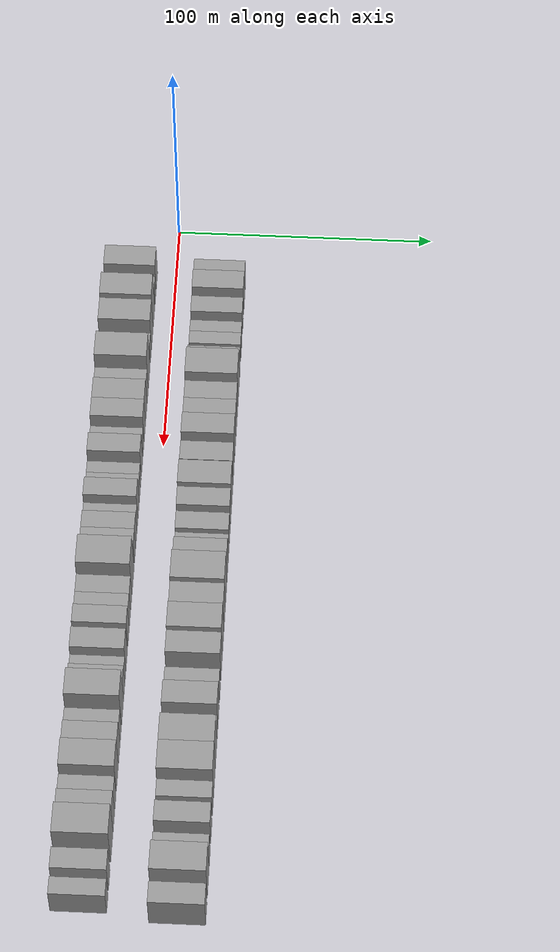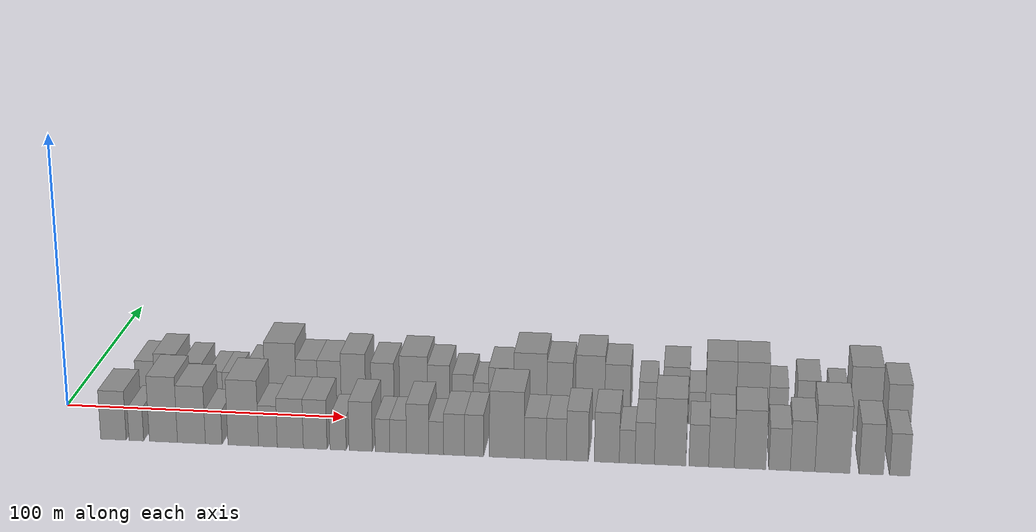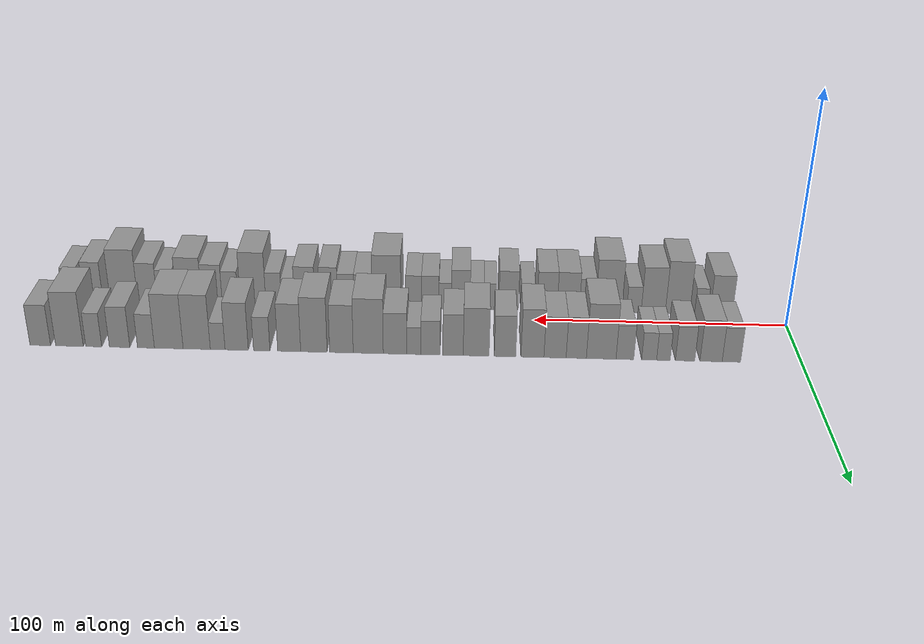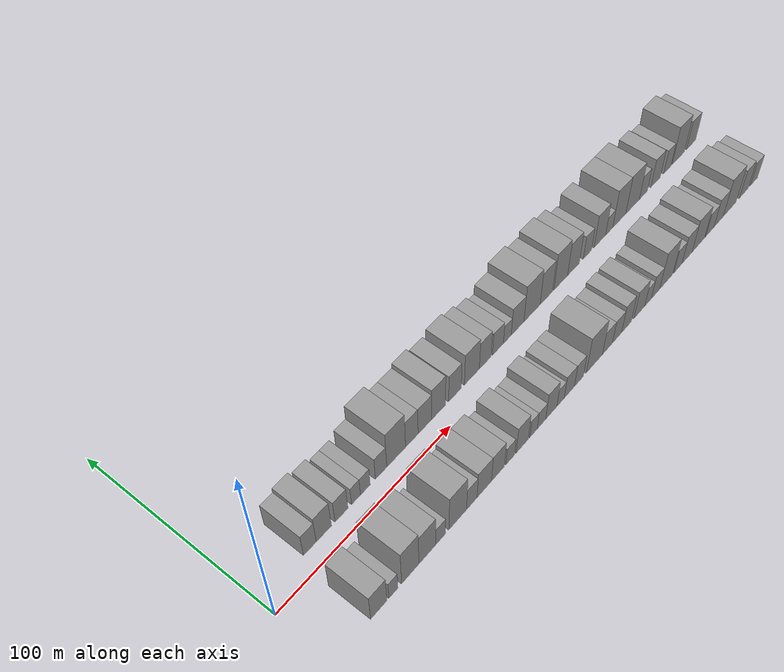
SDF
<sdf version="1.6">
 <world name="default">
  <scene>
   <sky><clouds><speed>12</speed></clouds></sky>
   <ambient>0.4 0.4 0.4 1</ambient>
   <background>0.7 0.7 0.7 1</background>
   <shadows>1</shadows>
  </scene>
  <gravity>0 0 -9.8066</gravity>
  <magnetic_field>6e-06 2.3e-05 -4.2e-05</magnetic_field>
  <physics default="0" name="default_physics" type="ode">
   <ode>
    <solver>
     <type>quick</type>
     <iters>10</iters>
     <sor>1.0</sor>
     <use_dynamic_moi_rescaling>0</use_dynamic_moi_rescaling>
    </solver>
    <constraints>
     <cfm>0</cfm>
     <erp>0.2</erp>
     <contact_max_correcting_vel>100</contact_max_correcting_vel>
     <contact_surface_layer>0.001</contact_surface_layer>
    </constraints>
   </ode>
   <max_step_size>0.004</max_step_size>
   <real_time_factor>1</real_time_factor>
   <real_time_update_rate>250</real_time_update_rate>
  </physics>
  <light name="sun" type="directional">
   <pose>0 0 10 0 0 0</pose>
   <diffuse>0.8 0.8 0.8 1</diffuse>
   <specular>0.2 0.2 0.2 1</specular>
   <attenuation>
    <range>1000</range>
    <constant>0.9</constant>
    <linear>0.01</linear>
    <quadratic>0.001</quadratic>
   </attenuation>
   <direction>-0.5 0.1 -0.9</direction>
  </light>
  <model name="building_1">
   <static>1</static>
   <pose>26.4708 17.5000 0 0.000000 0.000000 1.570796</pose>
   <link name="link">
    <pose>0 0 7.50 0 0 0</pose>
    <collision name="collision"><geometry><box><size>20.0000 6.9415 15.0000</size></box></geometry></collision>
    <visual name="visual">
     <cast_shadows>0</cast_shadows>
     <geometry><box><size>20.0000 6.9415 15.0000</size></box></geometry>
     <material>
      <script>
       <uri>model://grey_wall/materials/scripts</uri>
       <uri>model://grey_wall/materials/textures</uri>
       <name>vrc/grey_wall</name>
      </script>
     </material>
    </visual>
   </link>
  </model>
  <model name="building_2">
   <static>1</static>
   <pose>34.1181 17.5000 0 0.000000 0.000000 1.570796</pose>
   <link name="link">
    <pose>0 0 9.00 0 0 0</pose>
    <collision name="collision"><geometry><box><size>20.0000 8.3533 18.0000</size></box></geometry></collision>
    <visual name="visual">
     <cast_shadows>0</cast_shadows>
     <geometry><box><size>20.0000 8.3533 18.0000</size></box></geometry>
     <material>
      <script>
       <uri>model://grey_wall/materials/scripts</uri>
       <uri>model://grey_wall/materials/textures</uri>
       <name>vrc/grey_wall</name>
      </script>
     </material>
    </visual>
   </link>
  </model>
  <model name="building_3">
   <static>1</static>
   <pose>43.9311 17.5000 0 0.000000 0.000000 1.570796</pose>
   <link name="link">
    <pose>0 0 7.50 0 0 0</pose>
    <collision name="collision"><geometry><box><size>20.0000 7.2727 15.0000</size></box></geometry></collision>
    <visual name="visual">
     <cast_shadows>0</cast_shadows>
     <geometry><box><size>20.0000 7.2727 15.0000</size></box></geometry>
     <material>
      <script>
       <uri>model://grey_wall/materials/scripts</uri>
       <uri>model://grey_wall/materials/textures</uri>
       <name>vrc/grey_wall</name>
      </script>
     </material>
    </visual>
   </link>
  </model>
  <model name="building_4">
   <static>1</static>
   <pose>52.1233 17.5000 0 0.000000 0.000000 1.570796</pose>
   <link name="link">
    <pose>0 0 6.00 0 0 0</pose>
    <collision name="collision"><geometry><box><size>20.0000 5.1117 12.0000</size></box></geometry></collision>
    <visual name="visual">
     <cast_shadows>0</cast_shadows>
     <geometry><box><size>20.0000 5.1117 12.0000</size></box></geometry>
     <material>
      <script>
       <uri>model://grey_wall/materials/scripts</uri>
       <uri>model://grey_wall/materials/textures</uri>
       <name>vrc/grey_wall</name>
      </script>
     </material>
    </visual>
   </link>
  </model>
  <model name="building_5">
   <static>1</static>
   <pose>57.5063 17.5000 0 0.000000 0.000000 1.570796</pose>
   <link name="link">
    <pose>0 0 6.00 0 0 0</pose>
    <collision name="collision"><geometry><box><size>20.0000 5.6544 12.0000</size></box></geometry></collision>
    <visual name="visual">
     <cast_shadows>0</cast_shadows>
     <geometry><box><size>20.0000 5.6544 12.0000</size></box></geometry>
     <material>
      <script>
       <uri>model://grey_wall/materials/scripts</uri>
       <uri>model://grey_wall/materials/textures</uri>
       <name>vrc/grey_wall</name>
      </script>
     </material>
    </visual>
   </link>
  </model>
  <model name="building_6">
   <static>1</static>
   <pose>66.6913 17.5000 0 0.000000 0.000000 1.570796</pose>
   <link name="link">
    <pose>0 0 7.50 0 0 0</pose>
    <collision name="collision"><geometry><box><size>20.0000 6.7156 15.0000</size></box></geometry></collision>
    <visual name="visual">
     <cast_shadows>0</cast_shadows>
     <geometry><box><size>20.0000 6.7156 15.0000</size></box></geometry>
     <material>
      <script>
       <uri>model://grey_wall/materials/scripts</uri>
       <uri>model://grey_wall/materials/textures</uri>
       <name>vrc/grey_wall</name>
      </script>
     </material>
    </visual>
   </link>
  </model>
  <model name="building_7">
   <static>1</static>
   <pose>75.6834 17.5000 0 0.000000 0.000000 1.570796</pose>
   <link name="link">
    <pose>0 0 12.00 0 0 0</pose>
    <collision name="collision"><geometry><box><size>20.0000 11.2687 24.0000</size></box></geometry></collision>
    <visual name="visual">
     <cast_shadows>0</cast_shadows>
     <geometry><box><size>20.0000 11.2687 24.0000</size></box></geometry>
     <material>
      <script>
       <uri>model://grey_wall/materials/scripts</uri>
       <uri>model://grey_wall/materials/textures</uri>
       <name>vrc/grey_wall</name>
      </script>
     </material>
    </visual>
   </link>
  </model>
  <model name="building_8">
   <static>1</static>
   <pose>85.1692 17.5000 0 0.000000 0.000000 1.570796</pose>
   <link name="link">
    <pose>0 0 9.00 0 0 0</pose>
    <collision name="collision"><geometry><box><size>20.0000 7.7029 18.0000</size></box></geometry></collision>
    <visual name="visual">
     <cast_shadows>0</cast_shadows>
     <geometry><box><size>20.0000 7.7029 18.0000</size></box></geometry>
     <material>
      <script>
       <uri>model://grey_wall/materials/scripts</uri>
       <uri>model://grey_wall/materials/textures</uri>
       <name>vrc/grey_wall</name>
      </script>
     </material>
    </visual>
   </link>
  </model>
  <model name="building_9">
   <static>1</static>
   <pose>93.2389 17.5000 0 0.000000 0.000000 1.570796</pose>
   <link name="link">
    <pose>0 0 9.00 0 0 0</pose>
    <collision name="collision"><geometry><box><size>20.0000 8.4366 18.0000</size></box></geometry></collision>
    <visual name="visual">
     <cast_shadows>0</cast_shadows>
     <geometry><box><size>20.0000 8.4366 18.0000</size></box></geometry>
     <material>
      <script>
       <uri>model://grey_wall/materials/scripts</uri>
       <uri>model://grey_wall/materials/textures</uri>
       <name>vrc/grey_wall</name>
      </script>
     </material>
    </visual>
   </link>
  </model>
  <model name="building_10">
   <static>1</static>
   <pose>101.8389 17.5000 0 0.000000 0.000000 1.570796</pose>
   <link name="link">
    <pose>0 0 10.50 0 0 0</pose>
    <collision name="collision"><geometry><box><size>20.0000 8.7634 21.0000</size></box></geometry></collision>
    <visual name="visual">
     <cast_shadows>0</cast_shadows>
     <geometry><box><size>20.0000 8.7634 21.0000</size></box></geometry>
     <material>
      <script>
       <uri>model://grey_wall/materials/scripts</uri>
       <uri>model://grey_wall/materials/textures</uri>
       <name>vrc/grey_wall</name>
      </script>
     </material>
    </visual>
   </link>
  </model>
  <model name="building_11">
   <static>1</static>
   <pose>112.3076 17.5000 0 0.000000 0.000000 1.570796</pose>
   <link name="link">
    <pose>0 0 9.00 0 0 0</pose>
    <collision name="collision"><geometry><box><size>20.0000 8.1739 18.0000</size></box></geometry></collision>
    <visual name="visual">
     <cast_shadows>0</cast_shadows>
     <geometry><box><size>20.0000 8.1739 18.0000</size></box></geometry>
     <material>
      <script>
       <uri>model://grey_wall/materials/scripts</uri>
       <uri>model://grey_wall/materials/textures</uri>
       <name>vrc/grey_wall</name>
      </script>
     </material>
    </visual>
   </link>
  </model>
  <model name="building_12">
   <static>1</static>
   <pose>123.3487 17.5000 0 0.000000 0.000000 1.570796</pose>
   <link name="link">
    <pose>0 0 10.50 0 0 0</pose>
    <collision name="collision"><geometry><box><size>20.0000 9.9083 21.0000</size></box></geometry></collision>
    <visual name="visual">
     <cast_shadows>0</cast_shadows>
     <geometry><box><size>20.0000 9.9083 21.0000</size></box></geometry>
     <material>
      <script>
       <uri>model://grey_wall/materials/scripts</uri>
       <uri>model://grey_wall/materials/textures</uri>
       <name>vrc/grey_wall</name>
      </script>
     </material>
    </visual>
   </link>
  </model>
  <model name="building_13">
   <static>1</static>
   <pose>132.2351 17.5000 0 0.000000 0.000000 1.570796</pose>
   <link name="link">
    <pose>0 0 9.00 0 0 0</pose>
    <collision name="collision"><geometry><box><size>20.0000 7.8645 18.0000</size></box></geometry></collision>
    <visual name="visual">
     <cast_shadows>0</cast_shadows>
     <geometry><box><size>20.0000 7.8645 18.0000</size></box></geometry>
     <material>
      <script>
       <uri>model://grey_wall/materials/scripts</uri>
       <uri>model://grey_wall/materials/textures</uri>
       <name>vrc/grey_wall</name>
      </script>
     </material>
    </visual>
   </link>
  </model>
  <model name="building_14">
   <static>1</static>
   <pose>140.8836 17.5000 0 0.000000 0.000000 1.570796</pose>
   <link name="link">
    <pose>0 0 7.50 0 0 0</pose>
    <collision name="collision"><geometry><box><size>20.0000 7.4326 15.0000</size></box></geometry></collision>
    <visual name="visual">
     <cast_shadows>0</cast_shadows>
     <geometry><box><size>20.0000 7.4326 15.0000</size></box></geometry>
     <material>
      <script>
       <uri>model://grey_wall/materials/scripts</uri>
       <uri>model://grey_wall/materials/textures</uri>
       <name>vrc/grey_wall</name>
      </script>
     </material>
    </visual>
   </link>
  </model>
  <model name="building_15">
   <static>1</static>
   <pose>147.3118 17.5000 0 0.000000 0.000000 1.570796</pose>
   <link name="link">
    <pose>0 0 6.00 0 0 0</pose>
    <collision name="collision"><geometry><box><size>20.0000 5.4236 12.0000</size></box></geometry></collision>
    <visual name="visual">
     <cast_shadows>0</cast_shadows>
     <geometry><box><size>20.0000 5.4236 12.0000</size></box></geometry>
     <material>
      <script>
       <uri>model://grey_wall/materials/scripts</uri>
       <uri>model://grey_wall/materials/textures</uri>
       <name>vrc/grey_wall</name>
      </script>
     </material>
    </visual>
   </link>
  </model>
  <model name="building_16">
   <static>1</static>
   <pose>154.4905 17.5000 0 0.000000 0.000000 1.570796</pose>
   <link name="link">
    <pose>0 0 9.00 0 0 0</pose>
    <collision name="collision"><geometry><box><size>20.0000 8.9338 18.0000</size></box></geometry></collision>
    <visual name="visual">
     <cast_shadows>0</cast_shadows>
     <geometry><box><size>20.0000 8.9338 18.0000</size></box></geometry>
     <material>
      <script>
       <uri>model://grey_wall/materials/scripts</uri>
       <uri>model://grey_wall/materials/textures</uri>
       <name>vrc/grey_wall</name>
      </script>
     </material>
    </visual>
   </link>
  </model>
  <model name="building_17">
   <static>1</static>
   <pose>164.7405 17.5000 0 0.000000 0.000000 1.570796</pose>
   <link name="link">
    <pose>0 0 12.00 0 0 0</pose>
    <collision name="collision"><geometry><box><size>20.0000 11.5662 24.0000</size></box></geometry></collision>
    <visual name="visual">
     <cast_shadows>0</cast_shadows>
     <geometry><box><size>20.0000 11.5662 24.0000</size></box></geometry>
     <material>
      <script>
       <uri>model://grey_wall/materials/scripts</uri>
       <uri>model://grey_wall/materials/textures</uri>
       <name>vrc/grey_wall</name>
      </script>
     </material>
    </visual>
   </link>
  </model>
  <model name="building_18">
   <static>1</static>
   <pose>175.0531 17.5000 0 0.000000 0.000000 1.570796</pose>
   <link name="link">
    <pose>0 0 10.50 0 0 0</pose>
    <collision name="collision"><geometry><box><size>20.0000 9.0590 21.0000</size></box></geometry></collision>
    <visual name="visual">
     <cast_shadows>0</cast_shadows>
     <geometry><box><size>20.0000 9.0590 21.0000</size></box></geometry>
     <material>
      <script>
       <uri>model://grey_wall/materials/scripts</uri>
       <uri>model://grey_wall/materials/textures</uri>
       <name>vrc/grey_wall</name>
      </script>
     </material>
    </visual>
   </link>
  </model>
  <model name="building_19">
   <static>1</static>
   <pose>185.6934 17.5000 0 0.000000 0.000000 1.570796</pose>
   <link name="link">
    <pose>0 0 12.00 0 0 0</pose>
    <collision name="collision"><geometry><box><size>20.0000 10.2216 24.0000</size></box></geometry></collision>
    <visual name="visual">
     <cast_shadows>0</cast_shadows>
     <geometry><box><size>20.0000 10.2216 24.0000</size></box></geometry>
     <material>
      <script>
       <uri>model://grey_wall/materials/scripts</uri>
       <uri>model://grey_wall/materials/textures</uri>
       <name>vrc/grey_wall</name>
      </script>
     </material>
    </visual>
   </link>
  </model>
  <model name="building_20">
   <static>1</static>
   <pose>195.2485 17.5000 0 0.000000 0.000000 1.570796</pose>
   <link name="link">
    <pose>0 0 10.50 0 0 0</pose>
    <collision name="collision"><geometry><box><size>20.0000 8.8885 21.0000</size></box></geometry></collision>
    <visual name="visual">
     <cast_shadows>0</cast_shadows>
     <geometry><box><size>20.0000 8.8885 21.0000</size></box></geometry>
     <material>
      <script>
       <uri>model://grey_wall/materials/scripts</uri>
       <uri>model://grey_wall/materials/textures</uri>
       <name>vrc/grey_wall</name>
      </script>
     </material>
    </visual>
   </link>
  </model>
  <model name="building_21">
   <static>1</static>
   <pose>205.8795 17.5000 0 0.000000 0.000000 1.570796</pose>
   <link name="link">
    <pose>0 0 7.50 0 0 0</pose>
    <collision name="collision"><geometry><box><size>20.0000 6.3734 15.0000</size></box></geometry></collision>
    <visual name="visual">
     <cast_shadows>0</cast_shadows>
     <geometry><box><size>20.0000 6.3734 15.0000</size></box></geometry>
     <material>
      <script>
       <uri>model://grey_wall/materials/scripts</uri>
       <uri>model://grey_wall/materials/textures</uri>
       <name>vrc/grey_wall</name>
      </script>
     </material>
    </visual>
   </link>
  </model>
  <model name="building_22">
   <static>1</static>
   <pose>215.5824 17.5000 0 0.000000 0.000000 1.570796</pose>
   <link name="link">
    <pose>0 0 10.50 0 0 0</pose>
    <collision name="collision"><geometry><box><size>20.0000 9.0325 21.0000</size></box></geometry></collision>
    <visual name="visual">
     <cast_shadows>0</cast_shadows>
     <geometry><box><size>20.0000 9.0325 21.0000</size></box></geometry>
     <material>
      <script>
       <uri>model://grey_wall/materials/scripts</uri>
       <uri>model://grey_wall/materials/textures</uri>
       <name>vrc/grey_wall</name>
      </script>
     </material>
    </visual>
   </link>
  </model>
  <model name="building_23">
   <static>1</static>
   <pose>222.9593 17.5000 0 0.000000 0.000000 1.570796</pose>
   <link name="link">
    <pose>0 0 6.00 0 0 0</pose>
    <collision name="collision"><geometry><box><size>20.0000 5.7213 12.0000</size></box></geometry></collision>
    <visual name="visual">
     <cast_shadows>0</cast_shadows>
     <geometry><box><size>20.0000 5.7213 12.0000</size></box></geometry>
     <material>
      <script>
       <uri>model://grey_wall/materials/scripts</uri>
       <uri>model://grey_wall/materials/textures</uri>
       <name>vrc/grey_wall</name>
      </script>
     </material>
    </visual>
   </link>
  </model>
  <model name="building_24">
   <static>1</static>
   <pose>231.1125 17.5000 0 0.000000 0.000000 1.570796</pose>
   <link name="link">
    <pose>0 0 12.00 0 0 0</pose>
    <collision name="collision"><geometry><box><size>20.0000 10.5853 24.0000</size></box></geometry></collision>
    <visual name="visual">
     <cast_shadows>0</cast_shadows>
     <geometry><box><size>20.0000 10.5853 24.0000</size></box></geometry>
     <material>
      <script>
       <uri>model://grey_wall/materials/scripts</uri>
       <uri>model://grey_wall/materials/textures</uri>
       <name>vrc/grey_wall</name>
      </script>
     </material>
    </visual>
   </link>
  </model>
  <model name="building_25">
   <static>1</static>
   <pose>242.0030 17.5000 0 0.000000 0.000000 1.570796</pose>
   <link name="link">
    <pose>0 0 12.00 0 0 0</pose>
    <collision name="collision"><geometry><box><size>20.0000 11.1956 24.0000</size></box></geometry></collision>
    <visual name="visual">
     <cast_shadows>0</cast_shadows>
     <geometry><box><size>20.0000 11.1956 24.0000</size></box></geometry>
     <material>
      <script>
       <uri>model://grey_wall/materials/scripts</uri>
       <uri>model://grey_wall/materials/textures</uri>
       <name>vrc/grey_wall</name>
      </script>
     </material>
    </visual>
   </link>
  </model>
  <model name="building_26">
   <static>1</static>
   <pose>250.9000 17.5000 0 0.000000 0.000000 1.570796</pose>
   <link name="link">
    <pose>0 0 7.50 0 0 0</pose>
    <collision name="collision"><geometry><box><size>20.0000 6.5985 15.0000</size></box></geometry></collision>
    <visual name="visual">
     <cast_shadows>0</cast_shadows>
     <geometry><box><size>20.0000 6.5985 15.0000</size></box></geometry>
     <material>
      <script>
       <uri>model://grey_wall/materials/scripts</uri>
       <uri>model://grey_wall/materials/textures</uri>
       <name>vrc/grey_wall</name>
      </script>
     </material>
    </visual>
   </link>
  </model>
  <model name="building_27">
   <static>1</static>
   <pose>261.1940 17.5000 0 0.000000 0.000000 1.570796</pose>
   <link name="link">
    <pose>0 0 9.00 0 0 0</pose>
    <collision name="collision"><geometry><box><size>20.0000 7.9895 18.0000</size></box></geometry></collision>
    <visual name="visual">
     <cast_shadows>0</cast_shadows>
     <geometry><box><size>20.0000 7.9895 18.0000</size></box></geometry>
     <material>
      <script>
       <uri>model://grey_wall/materials/scripts</uri>
       <uri>model://grey_wall/materials/textures</uri>
       <name>vrc/grey_wall</name>
      </script>
     </material>
    </visual>
   </link>
  </model>
  <model name="building_28">
   <static>1</static>
   <pose>271.3050 17.5000 0 0.000000 0.000000 1.570796</pose>
   <link name="link">
    <pose>0 0 7.50 0 0 0</pose>
    <collision name="collision"><geometry><box><size>20.0000 6.2325 15.0000</size></box></geometry></collision>
    <visual name="visual">
     <cast_shadows>0</cast_shadows>
     <geometry><box><size>20.0000 6.2325 15.0000</size></box></geometry>
     <material>
      <script>
       <uri>model://grey_wall/materials/scripts</uri>
       <uri>model://grey_wall/materials/textures</uri>
       <name>vrc/grey_wall</name>
      </script>
     </material>
    </visual>
   </link>
  </model>
  <model name="building_29">
   <static>1</static>
   <pose>280.8376 17.5000 0 0.000000 0.000000 1.570796</pose>
   <link name="link">
    <pose>0 0 12.00 0 0 0</pose>
    <collision name="collision"><geometry><box><size>20.0000 10.8327 24.0000</size></box></geometry></collision>
    <visual name="visual">
     <cast_shadows>0</cast_shadows>
     <geometry><box><size>20.0000 10.8327 24.0000</size></box></geometry>
     <material>
      <script>
       <uri>model://grey_wall/materials/scripts</uri>
       <uri>model://grey_wall/materials/textures</uri>
       <name>vrc/grey_wall</name>
      </script>
     </material>
    </visual>
   </link>
  </model>
  <model name="building_30">
   <static>1</static>
   <pose>292.2937 17.5000 0 0.000000 0.000000 1.570796</pose>
   <link name="link">
    <pose>0 0 9.00 0 0 0</pose>
    <collision name="collision"><geometry><box><size>20.0000 8.0795 18.0000</size></box></geometry></collision>
    <visual name="visual">
     <cast_shadows>0</cast_shadows>
     <geometry><box><size>20.0000 8.0795 18.0000</size></box></geometry>
     <material>
      <script>
       <uri>model://grey_wall/materials/scripts</uri>
       <uri>model://grey_wall/materials/textures</uri>
       <name>vrc/grey_wall</name>
      </script>
     </material>
    </visual>
   </link>
  </model>
  <model name="building_31">
   <static>1</static>
   <pose>24.4698 -17.5000 0 0.000000 0.000000 1.570796</pose>
   <link name="link">
    <pose>0 0 9.00 0 0 0</pose>
    <collision name="collision"><geometry><box><size>20.0000 8.9396 18.0000</size></box></geometry></collision>
    <visual name="visual">
     <cast_shadows>0</cast_shadows>
     <geometry><box><size>20.0000 8.9396 18.0000</size></box></geometry>
     <material>
      <script>
       <uri>model://grey_wall/materials/scripts</uri>
       <uri>model://grey_wall/materials/textures</uri>
       <name>vrc/grey_wall</name>
      </script>
     </material>
    </visual>
   </link>
  </model>
  <model name="building_32">
   <static>1</static>
   <pose>32.5034 -17.5000 0 0.000000 0.000000 1.570796</pose>
   <link name="link">
    <pose>0 0 6.00 0 0 0</pose>
    <collision name="collision"><geometry><box><size>20.0000 5.1276 12.0000</size></box></geometry></collision>
    <visual name="visual">
     <cast_shadows>0</cast_shadows>
     <geometry><box><size>20.0000 5.1276 12.0000</size></box></geometry>
     <material>
      <script>
       <uri>model://grey_wall/materials/scripts</uri>
       <uri>model://grey_wall/materials/textures</uri>
       <name>vrc/grey_wall</name>
      </script>
     </material>
    </visual>
   </link>
  </model>
  <model name="building_33">
   <static>1</static>
   <pose>41.9767 -17.5000 0 0.000000 0.000000 1.570796</pose>
   <link name="link">
    <pose>0 0 12.00 0 0 0</pose>
    <collision name="collision"><geometry><box><size>20.0000 9.8190 24.0000</size></box></geometry></collision>
    <visual name="visual">
     <cast_shadows>0</cast_shadows>
     <geometry><box><size>20.0000 9.8190 24.0000</size></box></geometry>
     <material>
      <script>
       <uri>model://grey_wall/materials/scripts</uri>
       <uri>model://grey_wall/materials/textures</uri>
       <name>vrc/grey_wall</name>
      </script>
     </material>
    </visual>
   </link>
  </model>
  <model name="building_34">
   <static>1</static>
   <pose>51.7552 -17.5000 0 0.000000 0.000000 1.570796</pose>
   <link name="link">
    <pose>0 0 10.50 0 0 0</pose>
    <collision name="collision"><geometry><box><size>20.0000 9.7381 21.0000</size></box></geometry></collision>
    <visual name="visual">
     <cast_shadows>0</cast_shadows>
     <geometry><box><size>20.0000 9.7381 21.0000</size></box></geometry>
     <material>
      <script>
       <uri>model://grey_wall/materials/scripts</uri>
       <uri>model://grey_wall/materials/textures</uri>
       <name>vrc/grey_wall</name>
      </script>
     </material>
    </visual>
   </link>
  </model>
  <model name="building_35">
   <static>1</static>
   <pose>59.5326 -17.5000 0 0.000000 0.000000 1.570796</pose>
   <link name="link">
    <pose>0 0 6.00 0 0 0</pose>
    <collision name="collision"><geometry><box><size>20.0000 5.8166 12.0000</size></box></geometry></collision>
    <visual name="visual">
     <cast_shadows>0</cast_shadows>
     <geometry><box><size>20.0000 5.8166 12.0000</size></box></geometry>
     <material>
      <script>
       <uri>model://grey_wall/materials/scripts</uri>
       <uri>model://grey_wall/materials/textures</uri>
       <name>vrc/grey_wall</name>
      </script>
     </material>
    </visual>
   </link>
  </model>
  <model name="building_36">
   <static>1</static>
   <pose>69.7482 -17.5000 0 0.000000 0.000000 1.570796</pose>
   <link name="link">
    <pose>0 0 12.00 0 0 0</pose>
    <collision name="collision"><geometry><box><size>20.0000 10.6147 24.0000</size></box></geometry></collision>
    <visual name="visual">
     <cast_shadows>0</cast_shadows>
     <geometry><box><size>20.0000 10.6147 24.0000</size></box></geometry>
     <material>
      <script>
       <uri>model://grey_wall/materials/scripts</uri>
       <uri>model://grey_wall/materials/textures</uri>
       <name>vrc/grey_wall</name>
      </script>
     </material>
    </visual>
   </link>
  </model>
  <model name="building_37">
   <static>1</static>
   <pose>78.3023 -17.5000 0 0.000000 0.000000 1.570796</pose>
   <link name="link">
    <pose>0 0 7.50 0 0 0</pose>
    <collision name="collision"><geometry><box><size>20.0000 6.4936 15.0000</size></box></geometry></collision>
    <visual name="visual">
     <cast_shadows>0</cast_shadows>
     <geometry><box><size>20.0000 6.4936 15.0000</size></box></geometry>
     <material>
      <script>
       <uri>model://grey_wall/materials/scripts</uri>
       <uri>model://grey_wall/materials/textures</uri>
       <name>vrc/grey_wall</name>
      </script>
     </material>
    </visual>
   </link>
  </model>
  <model name="building_38">
   <static>1</static>
   <pose>86.0346 -17.5000 0 0.000000 0.000000 1.570796</pose>
   <link name="link">
    <pose>0 0 9.00 0 0 0</pose>
    <collision name="collision"><geometry><box><size>20.0000 8.9710 18.0000</size></box></geometry></collision>
    <visual name="visual">
     <cast_shadows>0</cast_shadows>
     <geometry><box><size>20.0000 8.9710 18.0000</size></box></geometry>
     <material>
      <script>
       <uri>model://grey_wall/materials/scripts</uri>
       <uri>model://grey_wall/materials/textures</uri>
       <name>vrc/grey_wall</name>
      </script>
     </material>
    </visual>
   </link>
  </model>
  <model name="building_39">
   <static>1</static>
   <pose>94.6018 -17.5000 0 0.000000 0.000000 1.570796</pose>
   <link name="link">
    <pose>0 0 9.00 0 0 0</pose>
    <collision name="collision"><geometry><box><size>20.0000 8.1634 18.0000</size></box></geometry></collision>
    <visual name="visual">
     <cast_shadows>0</cast_shadows>
     <geometry><box><size>20.0000 8.1634 18.0000</size></box></geometry>
     <material>
      <script>
       <uri>model://grey_wall/materials/scripts</uri>
       <uri>model://grey_wall/materials/textures</uri>
       <name>vrc/grey_wall</name>
      </script>
     </material>
    </visual>
   </link>
  </model>
  <model name="building_40">
   <static>1</static>
   <pose>102.4759 -17.5000 0 0.000000 0.000000 1.570796</pose>
   <link name="link">
    <pose>0 0 6.00 0 0 0</pose>
    <collision name="collision"><geometry><box><size>20.0000 5.5847 12.0000</size></box></geometry></collision>
    <visual name="visual">
     <cast_shadows>0</cast_shadows>
     <geometry><box><size>20.0000 5.5847 12.0000</size></box></geometry>
     <material>
      <script>
       <uri>model://grey_wall/materials/scripts</uri>
       <uri>model://grey_wall/materials/textures</uri>
       <name>vrc/grey_wall</name>
      </script>
     </material>
    </visual>
   </link>
  </model>
  <model name="building_41">
   <static>1</static>
   <pose>110.2476 -17.5000 0 0.000000 0.000000 1.570796</pose>
   <link name="link">
    <pose>0 0 9.00 0 0 0</pose>
    <collision name="collision"><geometry><box><size>20.0000 7.9588 18.0000</size></box></geometry></collision>
    <visual name="visual">
     <cast_shadows>0</cast_shadows>
     <geometry><box><size>20.0000 7.9588 18.0000</size></box></geometry>
     <material>
      <script>
       <uri>model://grey_wall/materials/scripts</uri>
       <uri>model://grey_wall/materials/textures</uri>
       <name>vrc/grey_wall</name>
      </script>
     </material>
    </visual>
   </link>
  </model>
  <model name="building_42">
   <static>1</static>
   <pose>117.7077 -17.5000 0 0.000000 0.000000 1.570796</pose>
   <link name="link">
    <pose>0 0 6.00 0 0 0</pose>
    <collision name="collision"><geometry><box><size>20.0000 4.9614 12.0000</size></box></geometry></collision>
    <visual name="visual">
     <cast_shadows>0</cast_shadows>
     <geometry><box><size>20.0000 4.9614 12.0000</size></box></geometry>
     <material>
      <script>
       <uri>model://grey_wall/materials/scripts</uri>
       <uri>model://grey_wall/materials/textures</uri>
       <name>vrc/grey_wall</name>
      </script>
     </material>
    </visual>
   </link>
  </model>
  <model name="building_43">
   <static>1</static>
   <pose>123.0354 -17.5000 0 0.000000 0.000000 1.570796</pose>
   <link name="link">
    <pose>0 0 6.00 0 0 0</pose>
    <collision name="collision"><geometry><box><size>20.0000 5.6939 12.0000</size></box></geometry></collision>
    <visual name="visual">
     <cast_shadows>0</cast_shadows>
     <geometry><box><size>20.0000 5.6939 12.0000</size></box></geometry>
     <material>
      <script>
       <uri>model://grey_wall/materials/scripts</uri>
       <uri>model://grey_wall/materials/textures</uri>
       <name>vrc/grey_wall</name>
      </script>
     </material>
    </visual>
   </link>
  </model>
  <model name="building_44">
   <static>1</static>
   <pose>129.6922 -17.5000 0 0.000000 0.000000 1.570796</pose>
   <link name="link">
    <pose>0 0 9.00 0 0 0</pose>
    <collision name="collision"><geometry><box><size>20.0000 7.6197 18.0000</size></box></geometry></collision>
    <visual name="visual">
     <cast_shadows>0</cast_shadows>
     <geometry><box><size>20.0000 7.6197 18.0000</size></box></geometry>
     <material>
      <script>
       <uri>model://grey_wall/materials/scripts</uri>
       <uri>model://grey_wall/materials/textures</uri>
       <name>vrc/grey_wall</name>
      </script>
     </material>
    </visual>
   </link>
  </model>
  <model name="building_45">
   <static>1</static>
   <pose>136.0323 -17.5000 0 0.000000 0.000000 1.570796</pose>
   <link name="link">
    <pose>0 0 6.00 0 0 0</pose>
    <collision name="collision"><geometry><box><size>20.0000 5.0606 12.0000</size></box></geometry></collision>
    <visual name="visual">
     <cast_shadows>0</cast_shadows>
     <geometry><box><size>20.0000 5.0606 12.0000</size></box></geometry>
     <material>
      <script>
       <uri>model://grey_wall/materials/scripts</uri>
       <uri>model://grey_wall/materials/textures</uri>
       <name>vrc/grey_wall</name>
      </script>
     </material>
    </visual>
   </link>
  </model>
  <model name="building_46">
   <static>1</static>
   <pose>142.1181 -17.5000 0 0.000000 0.000000 1.570796</pose>
   <link name="link">
    <pose>0 0 7.50 0 0 0</pose>
    <collision name="collision"><geometry><box><size>20.0000 7.1110 15.0000</size></box></geometry></collision>
    <visual name="visual">
     <cast_shadows>0</cast_shadows>
     <geometry><box><size>20.0000 7.1110 15.0000</size></box></geometry>
     <material>
      <script>
       <uri>model://grey_wall/materials/scripts</uri>
       <uri>model://grey_wall/materials/textures</uri>
       <name>vrc/grey_wall</name>
      </script>
     </material>
    </visual>
   </link>
  </model>
  <model name="building_47">
   <static>1</static>
   <pose>148.8772 -17.5000 0 0.000000 0.000000 1.570796</pose>
   <link name="link">
    <pose>0 0 7.50 0 0 0</pose>
    <collision name="collision"><geometry><box><size>20.0000 6.4071 15.0000</size></box></geometry></collision>
    <visual name="visual">
     <cast_shadows>0</cast_shadows>
     <geometry><box><size>20.0000 6.4071 15.0000</size></box></geometry>
     <material>
      <script>
       <uri>model://grey_wall/materials/scripts</uri>
       <uri>model://grey_wall/materials/textures</uri>
       <name>vrc/grey_wall</name>
      </script>
     </material>
    </visual>
   </link>
  </model>
  <model name="building_48">
   <static>1</static>
   <pose>159.9604 -17.5000 0 0.000000 0.000000 1.570796</pose>
   <link name="link">
    <pose>0 0 12.00 0 0 0</pose>
    <collision name="collision"><geometry><box><size>20.0000 11.7594 24.0000</size></box></geometry></collision>
    <visual name="visual">
     <cast_shadows>0</cast_shadows>
     <geometry><box><size>20.0000 11.7594 24.0000</size></box></geometry>
     <material>
      <script>
       <uri>model://grey_wall/materials/scripts</uri>
       <uri>model://grey_wall/materials/textures</uri>
       <name>vrc/grey_wall</name>
      </script>
     </material>
    </visual>
   </link>
  </model>
  <model name="building_49">
   <static>1</static>
   <pose>169.5211 -17.5000 0 0.000000 0.000000 1.570796</pose>
   <link name="link">
    <pose>0 0 7.50 0 0 0</pose>
    <collision name="collision"><geometry><box><size>20.0000 7.3620 15.0000</size></box></geometry></collision>
    <visual name="visual">
     <cast_shadows>0</cast_shadows>
     <geometry><box><size>20.0000 7.3620 15.0000</size></box></geometry>
     <material>
      <script>
       <uri>model://grey_wall/materials/scripts</uri>
       <uri>model://grey_wall/materials/textures</uri>
       <name>vrc/grey_wall</name>
      </script>
     </material>
    </visual>
   </link>
  </model>
  <model name="building_50">
   <static>1</static>
   <pose>176.5949 -17.5000 0 0.000000 0.000000 1.570796</pose>
   <link name="link">
    <pose>0 0 7.50 0 0 0</pose>
    <collision name="collision"><geometry><box><size>20.0000 6.7854 15.0000</size></box></geometry></collision>
    <visual name="visual">
     <cast_shadows>0</cast_shadows>
     <geometry><box><size>20.0000 6.7854 15.0000</size></box></geometry>
     <material>
      <script>
       <uri>model://grey_wall/materials/scripts</uri>
       <uri>model://grey_wall/materials/textures</uri>
       <name>vrc/grey_wall</name>
      </script>
     </material>
    </visual>
   </link>
  </model>
  <model name="building_51">
   <static>1</static>
   <pose>183.6691 -17.5000 0 0.000000 0.000000 1.570796</pose>
   <link name="link">
    <pose>0 0 9.00 0 0 0</pose>
    <collision name="collision"><geometry><box><size>20.0000 7.3631 18.0000</size></box></geometry></collision>
    <visual name="visual">
     <cast_shadows>0</cast_shadows>
     <geometry><box><size>20.0000 7.3631 18.0000</size></box></geometry>
     <material>
      <script>
       <uri>model://grey_wall/materials/scripts</uri>
       <uri>model://grey_wall/materials/textures</uri>
       <name>vrc/grey_wall</name>
      </script>
     </material>
    </visual>
   </link>
  </model>
  <model name="building_52">
   <static>1</static>
   <pose>193.5242 -17.5000 0 0.000000 0.000000 1.570796</pose>
   <link name="link">
    <pose>0 0 9.00 0 0 0</pose>
    <collision name="collision"><geometry><box><size>20.0000 8.3470 18.0000</size></box></geometry></collision>
    <visual name="visual">
     <cast_shadows>0</cast_shadows>
     <geometry><box><size>20.0000 8.3470 18.0000</size></box></geometry>
     <material>
      <script>
       <uri>model://grey_wall/materials/scripts</uri>
       <uri>model://grey_wall/materials/textures</uri>
       <name>vrc/grey_wall</name>
      </script>
     </material>
    </visual>
   </link>
  </model>
  <model name="building_53">
   <static>1</static>
   <pose>200.3309 -17.5000 0 0.000000 0.000000 1.570796</pose>
   <link name="link">
    <pose>0 0 6.00 0 0 0</pose>
    <collision name="collision"><geometry><box><size>20.0000 5.2664 12.0000</size></box></geometry></collision>
    <visual name="visual">
     <cast_shadows>0</cast_shadows>
     <geometry><box><size>20.0000 5.2664 12.0000</size></box></geometry>
     <material>
      <script>
       <uri>model://grey_wall/materials/scripts</uri>
       <uri>model://grey_wall/materials/textures</uri>
       <name>vrc/grey_wall</name>
      </script>
     </material>
    </visual>
   </link>
  </model>
  <model name="building_54">
   <static>1</static>
   <pose>206.1816 -17.5000 0 0.000000 0.000000 1.570796</pose>
   <link name="link">
    <pose>0 0 7.50 0 0 0</pose>
    <collision name="collision"><geometry><box><size>20.0000 6.4350 15.0000</size></box></geometry></collision>
    <visual name="visual">
     <cast_shadows>0</cast_shadows>
     <geometry><box><size>20.0000 6.4350 15.0000</size></box></geometry>
     <material>
      <script>
       <uri>model://grey_wall/materials/scripts</uri>
       <uri>model://grey_wall/materials/textures</uri>
       <name>vrc/grey_wall</name>
      </script>
     </material>
    </visual>
   </link>
  </model>
  <model name="building_55">
   <static>1</static>
   <pose>214.6274 -17.5000 0 0.000000 0.000000 1.570796</pose>
   <link name="link">
    <pose>0 0 12.00 0 0 0</pose>
    <collision name="collision"><geometry><box><size>20.0000 10.4568 24.0000</size></box></geometry></collision>
    <visual name="visual">
     <cast_shadows>0</cast_shadows>
     <geometry><box><size>20.0000 10.4568 24.0000</size></box></geometry>
     <material>
      <script>
       <uri>model://grey_wall/materials/scripts</uri>
       <uri>model://grey_wall/materials/textures</uri>
       <name>vrc/grey_wall</name>
      </script>
     </material>
    </visual>
   </link>
  </model>
  <model name="building_56">
   <static>1</static>
   <pose>224.1201 -17.5000 0 0.000000 0.000000 1.570796</pose>
   <link name="link">
    <pose>0 0 7.50 0 0 0</pose>
    <collision name="collision"><geometry><box><size>20.0000 6.5286 15.0000</size></box></geometry></collision>
    <visual name="visual">
     <cast_shadows>0</cast_shadows>
     <geometry><box><size>20.0000 6.5286 15.0000</size></box></geometry>
     <material>
      <script>
       <uri>model://grey_wall/materials/scripts</uri>
       <uri>model://grey_wall/materials/textures</uri>
       <name>vrc/grey_wall</name>
      </script>
     </material>
    </visual>
   </link>
  </model>
  <model name="building_57">
   <static>1</static>
   <pose>231.6221 -17.5000 0 0.000000 0.000000 1.570796</pose>
   <link name="link">
    <pose>0 0 9.00 0 0 0</pose>
    <collision name="collision"><geometry><box><size>20.0000 8.4753 18.0000</size></box></geometry></collision>
    <visual name="visual">
     <cast_shadows>0</cast_shadows>
     <geometry><box><size>20.0000 8.4753 18.0000</size></box></geometry>
     <material>
      <script>
       <uri>model://grey_wall/materials/scripts</uri>
       <uri>model://grey_wall/materials/textures</uri>
       <name>vrc/grey_wall</name>
      </script>
     </material>
    </visual>
   </link>
  </model>
  <model name="building_58">
   <static>1</static>
   <pose>241.0723 -17.5000 0 0.000000 0.000000 1.570796</pose>
   <link name="link">
    <pose>0 0 10.50 0 0 0</pose>
    <collision name="collision"><geometry><box><size>20.0000 10.4251 21.0000</size></box></geometry></collision>
    <visual name="visual">
     <cast_shadows>0</cast_shadows>
     <geometry><box><size>20.0000 10.4251 21.0000</size></box></geometry>
     <material>
      <script>
       <uri>model://grey_wall/materials/scripts</uri>
       <uri>model://grey_wall/materials/textures</uri>
       <name>vrc/grey_wall</name>
      </script>
     </material>
    </visual>
   </link>
  </model>
  <model name="building_59">
   <static>1</static>
   <pose>250.8143 -17.5000 0 0.000000 0.000000 1.570796</pose>
   <link name="link">
    <pose>0 0 7.50 0 0 0</pose>
    <collision name="collision"><geometry><box><size>20.0000 7.0588 15.0000</size></box></geometry></collision>
    <visual name="visual">
     <cast_shadows>0</cast_shadows>
     <geometry><box><size>20.0000 7.0588 15.0000</size></box></geometry>
     <material>
      <script>
       <uri>model://grey_wall/materials/scripts</uri>
       <uri>model://grey_wall/materials/textures</uri>
       <name>vrc/grey_wall</name>
      </script>
     </material>
    </visual>
   </link>
  </model>
  <model name="building_60">
   <static>1</static>
   <pose>258.3700 -17.5000 0 0.000000 0.000000 1.570796</pose>
   <link name="link">
    <pose>0 0 9.00 0 0 0</pose>
    <collision name="collision"><geometry><box><size>20.0000 8.0526 18.0000</size></box></geometry></collision>
    <visual name="visual">
     <cast_shadows>0</cast_shadows>
     <geometry><box><size>20.0000 8.0526 18.0000</size></box></geometry>
     <material>
      <script>
       <uri>model://grey_wall/materials/scripts</uri>
       <uri>model://grey_wall/materials/textures</uri>
       <name>vrc/grey_wall</name>
      </script>
     </material>
    </visual>
   </link>
  </model>
  <model name="building_61">
   <static>1</static>
   <pose>268.1397 -17.5000 0 0.000000 0.000000 1.570796</pose>
   <link name="link">
    <pose>0 0 12.00 0 0 0</pose>
    <collision name="collision"><geometry><box><size>20.0000 11.4868 24.0000</size></box></geometry></collision>
    <visual name="visual">
     <cast_shadows>0</cast_shadows>
     <geometry><box><size>20.0000 11.4868 24.0000</size></box></geometry>
     <material>
      <script>
       <uri>model://grey_wall/materials/scripts</uri>
       <uri>model://grey_wall/materials/textures</uri>
       <name>vrc/grey_wall</name>
      </script>
     </material>
    </visual>
   </link>
  </model>
  <model name="building_62">
   <static>1</static>
   <pose>280.8443 -17.5000 0 0.000000 0.000000 1.570796</pose>
   <link name="link">
    <pose>0 0 9.00 0 0 0</pose>
    <collision name="collision"><geometry><box><size>20.0000 7.9222 18.0000</size></box></geometry></collision>
    <visual name="visual">
     <cast_shadows>0</cast_shadows>
     <geometry><box><size>20.0000 7.9222 18.0000</size></box></geometry>
     <material>
      <script>
       <uri>model://grey_wall/materials/scripts</uri>
       <uri>model://grey_wall/materials/textures</uri>
       <name>vrc/grey_wall</name>
      </script>
     </material>
    </visual>
   </link>
  </model>
  <model name="building_63">
   <static>1</static>
   <pose>290.1061 -17.5000 0 0.000000 0.000000 1.570796</pose>
   <link name="link">
    <pose>0 0 7.50 0 0 0</pose>
    <collision name="collision"><geometry><box><size>20.0000 6.6015 15.0000</size></box></geometry></collision>
    <visual name="visual">
     <cast_shadows>0</cast_shadows>
     <geometry><box><size>20.0000 6.6015 15.0000</size></box></geometry>
     <material>
      <script>
       <uri>model://grey_wall/materials/scripts</uri>
       <uri>model://grey_wall/materials/textures</uri>
       <name>vrc/grey_wall</name>
      </script>
     </material>
    </visual>
   </link>
  </model>
 </world>
</sdf>
